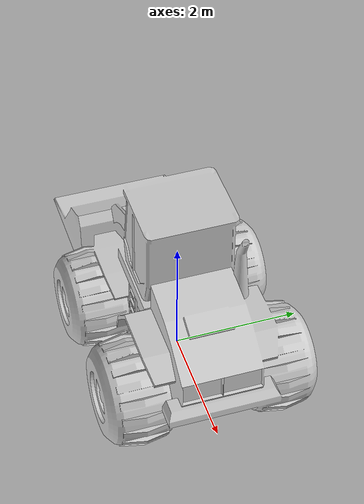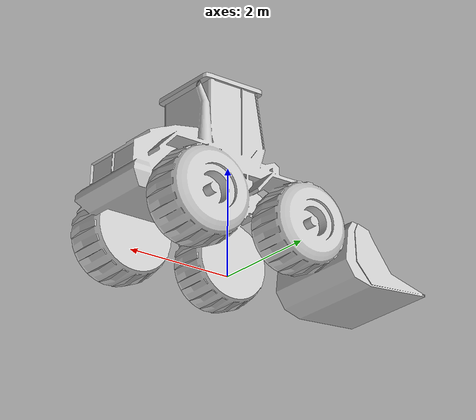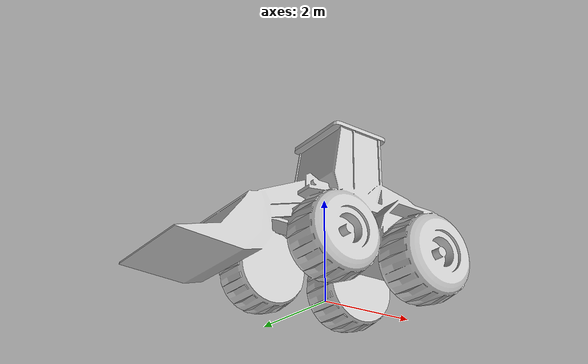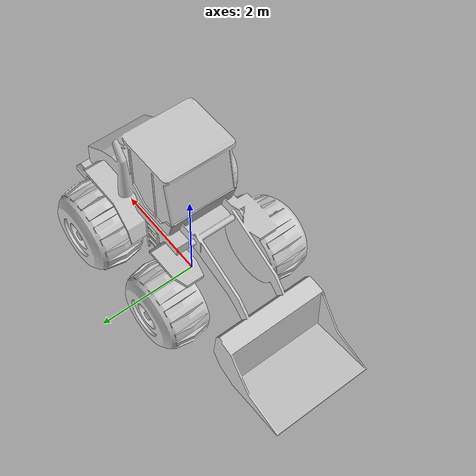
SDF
<?xml version="1.0" ?>
<sdf version="1.6">
  <model name="bulldozer1">
    <static>true</static>
    <link name="link">
      <collision name="collision">
        <pose>0 0 0 0 0 0</pose>
        <geometry>
          <mesh>
            <scale>0.5 0.5 0.5</scale>
            <uri>model://bulldozer1/meshes/bulldozer1.dae</uri>
          </mesh>
        </geometry>
      </collision>
      <visual name="visual">
        <pose>0 0 0 0 0 0</pose>
        <geometry>
          <mesh>
            <scale>0.5 0.5 0.5</scale>
            <uri>model://bulldozer1/meshes/bulldozer1.dae</uri>
          </mesh>
        </geometry>
      </visual>
    </link>
  </model>
</sdf>
